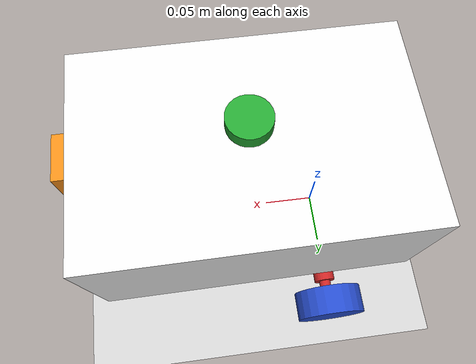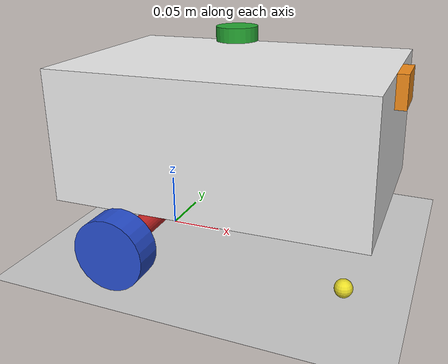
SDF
<sdf version="1.7">
 <world name="default">
  <light name="sun" type="directional">
   <pose>0 0 10 0 -0 0</pose>
   <diffuse>0.8 0.8 0.8 1</diffuse>
   <specular>0.2 0.2 0.2 1</specular>
   <attenuation>
    <range>1000</range>
    <constant>0.9</constant>
    <linear>0.01</linear>
    <quadratic>0.001</quadratic>
   </attenuation>
   <direction>-0.5 0.1 -0.9</direction>
   <spot><inner_angle>0</inner_angle><outer_angle>0</outer_angle><falloff>0</falloff></spot>
  </light>
  <model name="ground_plane">
   <static>1</static>
   <link name="link">
    <collision name="collision">
     <geometry><plane><normal>0 0 1</normal><size>100 100</size></plane></geometry>
     <surface><friction><ode><mu>100</mu><mu2>50</mu2></ode></friction></surface>
    </collision>
    <visual name="visual">
     <cast_shadows>0</cast_shadows>
     <geometry><plane><normal>0 0 1</normal><size>100 100</size></plane></geometry>
     <material>
      <script><uri>file://media/materials/scripts/gazebo.material</uri><name>Gazebo/Grey</name></script>
     </material>
    </visual>
   </link>
  </model>
  <gravity>0 0 -9.8</gravity>
  <magnetic_field>6e-06 2.3e-05 -4.2e-05</magnetic_field>
  <atmosphere type="adiabatic"/>
  <physics type="ode">
   <max_step_size>0.001</max_step_size>
   <real_time_factor>1</real_time_factor>
   <real_time_update_rate>1000</real_time_update_rate>
  </physics>
  <scene><ambient>0.4 0.4 0.4 1</ambient><background>0.7 0.7 0.7 1</background><shadows>1</shadows></scene>
  <spherical_coordinates>
   <surface_model>EARTH_WGS84</surface_model>
   <latitude_deg>0</latitude_deg>
   <longitude_deg>0</longitude_deg>
   <elevation>0</elevation>
   <heading_deg>0</heading_deg>
  </spherical_coordinates>
  <model name="sevillabot">
   <link name="base_link">
    <inertial>
     <pose>0.088639 -0 0.009648 0 -0 0</pose>
     <mass>0.2562</mass>
     <inertia>
      <ixx>0.00180063</ixx>
      <ixy>-9.2651e-20</ixy>
      <ixz>0.000343358</ixz>
      <iyy>0.00279217</iyy>
      <iyz>6.4872e-21</iyz>
      <izz>0.00334443</izz>
     </inertia>
    </inertial>
    <collision name="base_link_fixed_joint_lump__chassis_link_collision">
     <pose>0.066 0 0.084 0 -0 0</pose>
     <geometry><box><size>0.29 0.19 0.124</size></box></geometry>
    </collision>
    <collision name="base_link_fixed_joint_lump__camera_link_collision_1">
     <pose>0.216 0 0.131 0 -0 0</pose>
     <geometry><box><size>0.01 0.04 0.03</size></box></geometry>
    </collision>
    <collision name="base_link_fixed_joint_lump__left_caster_wheel_link_collision_2">
     <pose>0.187 0.071 -0.027 0 -0 0</pose>
     <geometry><sphere><radius>0.008</radius></sphere></geometry>
     <surface><friction><ode><mu>0.0001</mu><mu2>0.0001</mu2></ode></friction></surface>
    </collision>
    <collision name="base_link_fixed_joint_lump__lidar_link_collision_3">
     <pose>0.066 0 0.169 0 -0 0</pose>
     <geometry><cylinder><length>0.013</length><radius>0.019</radius></cylinder></geometry>
    </collision>
    <collision name="base_link_fixed_joint_lump__right_caster_wheel_link_collision_4">
     <pose>0.187 -0.071 -0.027 0 -0 0</pose>
     <geometry><sphere><radius>0.008</radius></sphere></geometry>
     <surface><friction><ode><mu>0.0001</mu><mu2>0.0001</mu2></ode></friction></surface>
    </collision>
    <collision name="base_link_fixed_joint_lump__left_motor_link_collision_5">
     <pose>0 0.07 0 -1.5708 0 0</pose>
     <geometry><cylinder><length>0.06</length><radius>0.01</radius></cylinder></geometry>
    </collision>
    <collision name="base_link_fixed_joint_lump__right_motor_link_collision_6">
     <pose>0 -0.07 0 1.5708 -0 0</pose>
     <geometry><cylinder><length>0.06</length><radius>0.01</radius></cylinder></geometry>
    </collision>
    <visual name="base_link_fixed_joint_lump__chassis_link_visual">
     <pose>0.066 0 0.084 0 -0 0</pose>
     <geometry><box><size>0.29 0.19 0.124</size></box></geometry>
     <material>
      <script><name>Gazebo/White</name><uri>file://media/materials/scripts/gazebo.material</uri></script>
     </material>
    </visual>
    <visual name="base_link_fixed_joint_lump__camera_link_visual_1">
     <pose>0.216 0 0.131 0 -0 0</pose>
     <geometry><box><size>0.01 0.04 0.03</size></box></geometry>
     <material>
      <script><name>Gazebo/Orange</name><uri>file://media/materials/scripts/gazebo.material</uri></script>
     </material>
    </visual>
    <visual name="base_link_fixed_joint_lump__left_caster_wheel_link_visual_2">
     <pose>0.187 0.071 -0.027 0 -0 0</pose>
     <geometry><sphere><radius>0.008</radius></sphere></geometry>
     <material>
      <script><name>Gazebo/Yellow</name><uri>file://media/materials/scripts/gazebo.material</uri></script>
     </material>
    </visual>
    <visual name="base_link_fixed_joint_lump__lidar_link_visual_3">
     <pose>0.066 0 0.169 0 -0 0</pose>
     <geometry><cylinder><length>0.013</length><radius>0.019</radius></cylinder></geometry>
     <material>
      <script><name>Gazebo/Green</name><uri>file://media/materials/scripts/gazebo.material</uri></script>
     </material>
    </visual>
    <visual name="base_link_fixed_joint_lump__right_caster_wheel_link_visual_4">
     <pose>0.187 -0.071 -0.027 0 -0 0</pose>
     <geometry><sphere><radius>0.008</radius></sphere></geometry>
     <material>
      <script><name>Gazebo/Yellow</name><uri>file://media/materials/scripts/gazebo.material</uri></script>
     </material>
    </visual>
    <visual name="base_link_fixed_joint_lump__left_motor_link_visual_5">
     <pose>0 0.07 0 -1.5708 0 0</pose>
     <geometry><cylinder><length>0.06</length><radius>0.01</radius></cylinder></geometry>
     <material>
      <script><name>Gazebo/Red</name><uri>file://media/materials/scripts/gazebo.material</uri></script>
     </material>
    </visual>
    <visual name="base_link_fixed_joint_lump__left_motor_link_visual_6">
     <pose>0 0.1045 0 -1.5708 0 0</pose>
     <geometry><cylinder><length>0.009</length><radius>0.0055</radius></cylinder></geometry>
     <material>
      <script><name>Gazebo/Red</name><uri>file://media/materials/scripts/gazebo.material</uri></script>
     </material>
    </visual>
    <visual name="base_link_fixed_joint_lump__right_motor_link_visual_7">
     <pose>0 -0.07 0 1.5708 -0 0</pose>
     <geometry><cylinder><length>0.06</length><radius>0.01</radius></cylinder></geometry>
     <material>
      <script><name>Gazebo/Red</name><uri>file://media/materials/scripts/gazebo.material</uri></script>
     </material>
    </visual>
    <visual name="base_link_fixed_joint_lump__right_motor_link_visual_8">
     <pose>0 -0.1045 0 1.5708 -0 0</pose>
     <geometry><cylinder><length>0.009</length><radius>0.0055</radius></cylinder></geometry>
     <material>
      <script><name>Gazebo/Red</name><uri>file://media/materials/scripts/gazebo.material</uri></script>
     </material>
    </visual>
    <sensor name="camera" type="camera">
     <visualize>1</visualize>
     <update_rate>10</update_rate>
     <camera>
      <horizontal_fov>1.086</horizontal_fov>
      <image><format>R8G8B8</format><width>640</width><height>480</height></image>
      <clip><near>0.05</near><far>8</far></clip>
     </camera>
     <plugin name="camera_controller" filename="libgazebo_ros_camera.so">
      <frame_name>camera_link_optical</frame_name>
     </plugin>
     <pose>0.211 0 0.116 0 -0 0</pose>
    </sensor>
    <sensor name="lidar" type="ray">
     <visualize>1</visualize>
     <update_rate>10</update_rate>
     <ray>
      <scan>
       <horizontal>
        <samples>360</samples>
        <resolution>1</resolution>
        <min_angle>-3.14</min_angle>
        <max_angle>3.14</max_angle>
       </horizontal>
       <vertical><samples>1</samples><min_angle>0</min_angle><max_angle>0</max_angle></vertical>
      </scan>
      <range><min>0.3</min><max>12</max><resolution>0.01</resolution></range>
     </ray>
     <plugin name="lidar_controller" filename="libgazebo_ros_ray_sensor.so">
      <ros><argument>~/out:=scan</argument></ros>
      <output_type>sensor_msgs/LaserScan</output_type>
      <frame_name>lidar_link</frame_name>
     </plugin>
     <pose>0.066 0 0.169 0 -0 0</pose>
    </sensor>
   </link>
   <joint name="left_wheel_joint" type="revolute">
    <pose relative_to="base_link">0 0.122 0 -1.5708 0 0</pose>
    <parent>base_link</parent>
    <child>left_wheel_link</child>
    <axis>
     <xyz>0 0 1</xyz>
     <limit><lower>-1e+16</lower><upper>1e+16</upper></limit>
     <dynamics><spring_reference>0</spring_reference><spring_stiffness>0</spring_stiffness></dynamics>
    </axis>
   </joint>
   <link name="left_wheel_link">
    <pose relative_to="left_wheel_joint">0 0 0 0 -0 0</pose>
    <inertial>
     <mass>0.05</mass>
     <inertia>
      <ixx>1.60198e-05</ixx>
      <ixy>0</ixy>
      <ixz>0</ixz>
      <iyy>1.60198e-05</iyy>
      <iyz>0</iyz>
      <izz>2.64063e-05</izz>
     </inertia>
    </inertial>
    <collision name="left_wheel_link_collision">
     <geometry><sphere><radius>0.0325</radius></sphere></geometry>
    </collision>
    <visual name="left_wheel_link_visual">
     <geometry><cylinder><length>0.026</length><radius>0.0325</radius></cylinder></geometry>
     <material>
      <script><name>Gazebo/Blue</name><uri>file://media/materials/scripts/gazebo.material</uri></script>
     </material>
    </visual>
   </link>
   <joint name="right_wheel_joint" type="revolute">
    <pose relative_to="base_link">0 -0.122 0 1.5708 -0 0</pose>
    <parent>base_link</parent>
    <child>right_wheel_link</child>
    <axis>
     <xyz>0 0 -1</xyz>
     <limit><lower>-1e+16</lower><upper>1e+16</upper></limit>
     <dynamics><spring_reference>0</spring_reference><spring_stiffness>0</spring_stiffness></dynamics>
    </axis>
   </joint>
   <link name="right_wheel_link">
    <pose relative_to="right_wheel_joint">0 0 0 0 -0 0</pose>
    <inertial>
     <mass>0.05</mass>
     <inertia>
      <ixx>1.60198e-05</ixx>
      <ixy>0</ixy>
      <ixz>0</ixz>
      <iyy>1.60198e-05</iyy>
      <iyz>0</iyz>
      <izz>2.64063e-05</izz>
     </inertia>
    </inertial>
    <collision name="right_wheel_link_collision">
     <geometry><sphere><radius>0.0325</radius></sphere></geometry>
    </collision>
    <visual name="right_wheel_link_visual">
     <geometry><cylinder><length>0.026</length><radius>0.0325</radius></cylinder></geometry>
     <material>
      <script><name>Gazebo/Blue</name><uri>file://media/materials/scripts/gazebo.material</uri></script>
     </material>
    </visual>
   </link>
   <static>0</static>
   <plugin name="gazebo_ros2_control" filename="libgazebo_ros2_control.so">
    <parameters>/home/mhered/dev_ws/install/sevillabot/share/sevillabot/config/my_controllers.yaml</parameters>
    <parameters>/home/mhered/dev_ws/install/sevillabot/share/sevillabot/config/gaz_ros2_ctl_use_sim.yaml</parameters>
   </plugin>
   <pose>0.006821 0.000925 0.032497 -2.6e-05 -0.013364 0.00622</pose>
  </model>
 </world>
</sdf>
